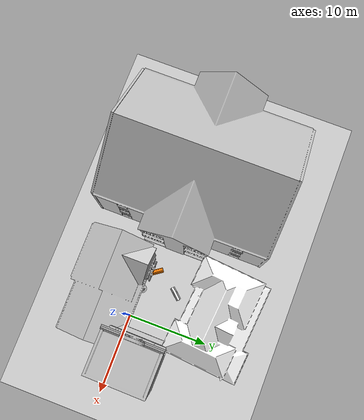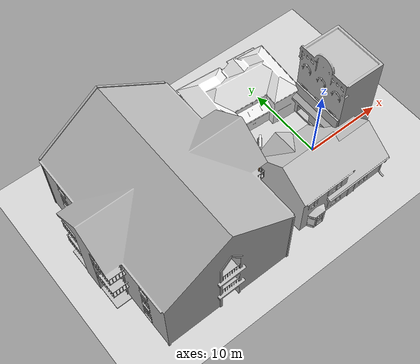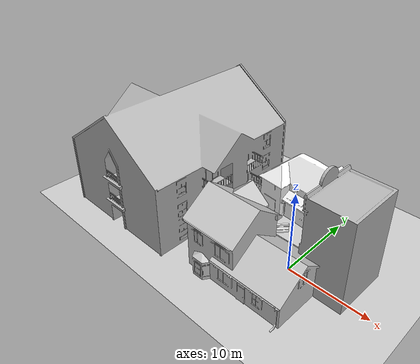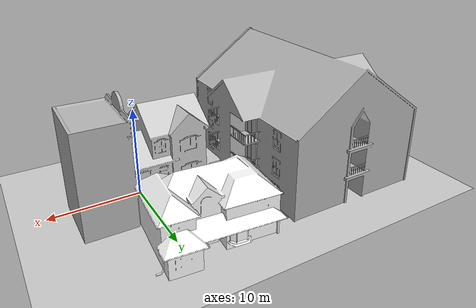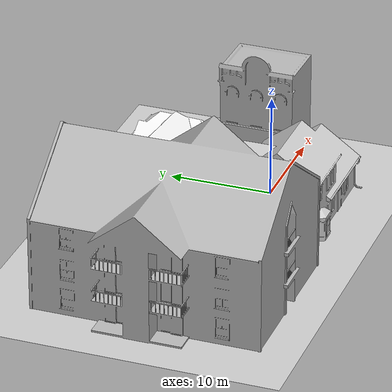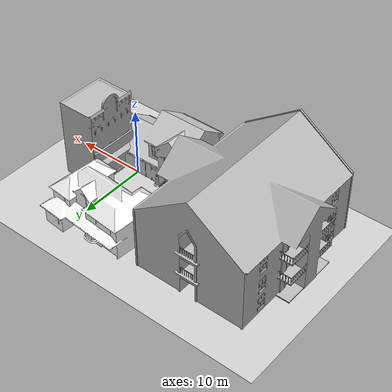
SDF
<sdf version="1.6">
 <world name="default">
  <model name="ground_plane">
   <static>1</static>
   <link name="link">
    <collision name="collision">
     <geometry><plane><normal>0 0 1</normal><size>100 100</size></plane></geometry>
     <surface><friction><ode><mu>100</mu><mu2>50</mu2></ode></friction></surface>
    </collision>
    <visual name="visual">
     <cast_shadows>0</cast_shadows>
     <geometry><plane><normal>0 0 1</normal><size>100 100</size></plane></geometry>
     <material>
      <script><uri>file://media/materials/scripts/gazebo.material</uri><name>Gazebo/Grey</name></script>
     </material>
    </visual>
   </link>
  </model>
  <light name="sun" type="directional">
   <pose>0 0 10 0 -0 0</pose>
   <diffuse>0.8 0.8 0.8 1</diffuse>
   <specular>0.2 0.2 0.2 1</specular>
   <attenuation>
    <range>1000</range>
    <constant>0.9</constant>
    <linear>0.01</linear>
    <quadratic>0.001</quadratic>
   </attenuation>
   <direction>-0.5 0.1 -0.9</direction>
  </light>
  <gravity>0 0 -9.8</gravity>
  <magnetic_field>6e-06 2.3e-05 -4.2e-05</magnetic_field>
  <atmosphere type="adiabatic"/>
  <physics name="default_physics" default="0" type="ode">
   <max_step_size>0.001</max_step_size>
   <real_time_factor>1</real_time_factor>
   <real_time_update_rate>1000</real_time_update_rate>
  </physics>
  <scene><ambient>0.4 0.4 0.4 1</ambient><background>0.7 0.7 0.7 1</background><shadows>1</shadows></scene>
  <spherical_coordinates>
   <surface_model>EARTH_WGS84</surface_model>
   <latitude_deg>0</latitude_deg>
   <longitude_deg>0</longitude_deg>
   <elevation>0</elevation>
   <heading_deg>0</heading_deg>
  </spherical_coordinates>
  <model name="udacity_bot">
   <link name="robot_footprint">
    <inertial>
     <pose>0.002303 0 0.000658 0 -0 0</pose>
     <mass>15.2</mass>
     <inertia>
      <ixx>0.100995</ixx>
      <ixy>0</ixy>
      <ixz>-0.00147697</ixz>
      <iyy>0.107165</iyy>
      <iyz>0</iyz>
      <izz>0.106171</izz>
     </inertia>
    </inertial>
    <collision name="robot_footprint_fixed_joint_lump__collision_collision">
     <geometry><box><size>0.4 0.2 0.1</size></box></geometry>
    </collision>
    <collision name="robot_footprint_fixed_joint_lump__back_caster_collision_collision_1">
     <pose>-0.15 0 -0.05 0 -0 0</pose>
     <geometry><sphere><radius>0.0499</radius></sphere></geometry>
    </collision>
    <collision name="robot_footprint_fixed_joint_lump__front_caster_collision_collision_2">
     <pose>0.15 0 -0.05 0 -0 0</pose>
     <geometry><sphere><radius>0.0499</radius></sphere></geometry>
    </collision>
    <collision name="robot_footprint_fixed_joint_lump__camera_collision_collision_3">
     <pose>0.2 0 0 0 -0 0</pose>
     <geometry><box><size>0.05 0.05 0.05</size></box></geometry>
    </collision>
    <collision name="robot_footprint_fixed_joint_lump__hokuyo_collision_collision_4">
     <pose>0.15 0 0.1 0 -0 0</pose>
     <geometry><box><size>0.1 0.1 0.1</size></box></geometry>
    </collision>
    <visual name="robot_footprint_fixed_joint_lump__chassis_visual_visual">
     <geometry><box><size>0.4 0.2 0.1</size></box></geometry>
    </visual>
    <visual name="robot_footprint_fixed_joint_lump__back_caster_visual_visual_1">
     <pose>-0.15 0 -0.05 0 -0 0</pose>
     <geometry><sphere><radius>0.05</radius></sphere></geometry>
    </visual>
    <visual name="robot_footprint_fixed_joint_lump__front_caster_visual_visual_2">
     <pose>0.15 0 -0.05 0 -0 0</pose>
     <geometry><sphere><radius>0.05</radius></sphere></geometry>
    </visual>
    <visual name="robot_footprint_fixed_joint_lump__camera_visual_visual_3">
     <pose>0.2 0 0 0 -0 0</pose>
     <geometry><box><size>0.05 0.05 0.05</size></box></geometry>
     <material><script><uri>__default__</uri><name>__default__</name></script></material>
    </visual>
    <visual name="robot_footprint_fixed_joint_lump__hokuyo_visual_visual_4">
     <pose>0.15 0 0.1 0 -0 0</pose>
     <geometry>
      <mesh><scale>1 1 1</scale><uri>/home/robond/catkin_ws/src/slam_project/meshes/hokuyo.dae</uri></mesh>
     </geometry>
     <material><script><uri>__default__</uri><name>__default__</name></script></material>
    </visual>
    <sensor name="camera1" type="depth">
     <always_on>1</always_on>
     <update_rate>20</update_rate>
     <visualize>1</visualize>
     <camera name="__default__">
      <horizontal_fov>1.047</horizontal_fov>
      <image><width>640</width><height>480</height><format>R8G8B8</format></image>
      <depth_camera><output>depths</output></depth_camera>
      <clip><near>0.1</near><far>20</far></clip>
     </camera>
     <plugin name="camera_controller" filename="libgazebo_ros_openni_kinect.so">
      <alwaysOn>true</alwaysOn>
      <updateRate>10.0</updateRate>
      <cameraName>camera</cameraName>
      <frameName>camera_rgbd_frame</frameName>
      <imageTopicName>rgb/image_raw</imageTopicName>
      <depthImageTopicName>depth/image_raw</depthImageTopicName>
      <pointCloudTopicName>depth/points</pointCloudTopicName>
      <cameraInfoTopicName>rgb/camera_info</cameraInfoTopicName>
      <depthImageCameraInfoTopicName>depth/camera_info</depthImageCameraInfoTopicName>
      <pointCloudCutoff>0.4</pointCloudCutoff>
      <hackBaseline>0.07</hackBaseline>
      <distortionK1>0.0</distortionK1>
      <distortionK2>0.0</distortionK2>
      <distortionK3>0.0</distortionK3>
      <distortionT1>0.0</distortionT1>
      <distortionT2>0.0</distortionT2>
      <CxPrime>0.0</CxPrime>
      <Cx>0.0</Cx>
      <Cy>0.0</Cy>
      <focalLength>0.0</focalLength>
      <robotNamespace>/</robotNamespace>
     </plugin>
     <pose>0.2 0 0 0 -0 0</pose>
    </sensor>
    <sensor name="head_hokuyo_sensor" type="ray">
     <visualize>0</visualize>
     <update_rate>40</update_rate>
     <ray>
      <scan>
       <horizontal>
        <samples>720</samples>
        <resolution>1</resolution>
        <min_angle>-1.5708</min_angle>
        <max_angle>1.5708</max_angle>
       </horizontal>
       <vertical><samples>1</samples><min_angle>0</min_angle><max_angle>0</max_angle></vertical>
      </scan>
      <range><min>0.2</min><max>30</max><resolution>0.01</resolution></range>
      <noise><type>gaussian</type><mean>0</mean><stddev>0.01</stddev></noise>
     </ray>
     <plugin name="gazebo_ros_head_hokuyo_controller" filename="libgazebo_ros_laser.so">
      <topicName>/scan</topicName>
      <frameName>hokuyo</frameName>
      <robotNamespace>/</robotNamespace>
     </plugin>
     <pose>0.15 0 0.1 0 -0 0</pose>
    </sensor>
   </link>
   <link name="left_wheel">
    <pose>0 0.15 0 0 -0 0</pose>
    <inertial>
     <pose>0 0 0 -0 1.5707 1.5707</pose>
     <mass>5</mass>
     <inertia><ixx>0.1</ixx><ixy>0</ixy><ixz>0</ixz><iyy>0.1</iyy><iyz>0</iyz><izz>0.1</izz></inertia>
    </inertial>
    <collision name="left_wheel_collision_collision">
     <pose>0 0 0 -0 1.5707 1.5707</pose>
     <geometry><cylinder><length>0.05</length><radius>0.1</radius></cylinder></geometry>
    </collision>
    <visual name="left_wheel_visual_visual">
     <pose>0 0 0 -0 1.5707 1.5707</pose>
     <geometry><cylinder><length>0.05</length><radius>0.1</radius></cylinder></geometry>
    </visual>
   </link>
   <joint name="left_wheel_hinge" type="revolute">
    <child>left_wheel</child>
    <parent>robot_footprint</parent>
    <axis>
     <xyz>0 1 0</xyz>
     <limit><lower>-1e+16</lower><upper>1e+16</upper></limit>
     <dynamics><spring_reference>0</spring_reference><spring_stiffness>0</spring_stiffness></dynamics>
     <use_parent_model_frame>1</use_parent_model_frame>
    </axis>
   </joint>
   <link name="right_wheel">
    <pose>0 -0.15 0 0 -0 0</pose>
    <inertial>
     <pose>0 0 0 -0 1.5707 1.5707</pose>
     <mass>5</mass>
     <inertia><ixx>0.1</ixx><ixy>0</ixy><ixz>0</ixz><iyy>0.1</iyy><iyz>0</iyz><izz>0.1</izz></inertia>
    </inertial>
    <collision name="right_wheel_collision_collision">
     <pose>0 0 0 -0 1.5707 1.5707</pose>
     <geometry><cylinder><length>0.05</length><radius>0.1</radius></cylinder></geometry>
    </collision>
    <visual name="right_wheel_visual_visual">
     <pose>0 0 0 -0 1.5707 1.5707</pose>
     <geometry><cylinder><length>0.05</length><radius>0.1</radius></cylinder></geometry>
    </visual>
   </link>
   <joint name="right_wheel_hinge" type="revolute">
    <child>right_wheel</child>
    <parent>robot_footprint</parent>
    <axis>
     <xyz>0 1 0</xyz>
     <limit><lower>-1e+16</lower><upper>1e+16</upper></limit>
     <dynamics><spring_reference>0</spring_reference><spring_stiffness>0</spring_stiffness></dynamics>
     <use_parent_model_frame>1</use_parent_model_frame>
    </axis>
   </joint>
   <static>0</static>
   <plugin name="differential_drive_controller" filename="libgazebo_ros_diff_drive.so">
    <legacyMode>false</legacyMode>
    <alwaysOn>true</alwaysOn>
    <updateRate>10</updateRate>
    <leftJoint>left_wheel_hinge</leftJoint>
    <rightJoint>right_wheel_hinge</rightJoint>
    <wheelSeparation>0.4</wheelSeparation>
    <wheelDiameter>0.2</wheelDiameter>
    <torque>10</torque>
    <commandTopic>cmd_vel</commandTopic>
    <odometryTopic>odom</odometryTopic>
    <odometryFrame>odom</odometryFrame>
    <robotBaseFrame>robot_footprint</robotBaseFrame>
    <robotNamespace>/</robotNamespace>
   </plugin>
   <pose>-0.013416 0.027732 0.100002 0 0.000514 0.144326</pose>
  </model>
  <model name="thrift_shop">
   <static>1</static>
   <link name="link">
    <collision name="collision">
     <pose>0 0 5.69469 0 -0 0</pose>
     <geometry><box><size>7.21297 5.43165 11.3894</size></box></geometry>
    </collision>
    <visual name="visual">
     <pose>0 -0.912491 0 0 -0 0</pose>
     <geometry><mesh><uri>model://thrift_shop/meshes/thrift_shop.dae</uri></mesh></geometry>
    </visual>
   </link>
   <pose>4.82029 2.24331 0 0 0 -1.58306</pose>
  </model>
  <model name="House 2">
   <static>1</static>
   <link name="link">
    <collision name="collision">
     <geometry><mesh><uri>model://house_2/meshes/house_2.dae</uri><scale>1.5 1.5 1.5</scale></mesh></geometry>
    </collision>
    <visual name="visual">
     <geometry><mesh><uri>model://house_2/meshes/house_2.dae</uri><scale>1.5 1.5 1.5</scale></mesh></geometry>
     <material>
      <script>
       <uri>model://house_2/materials/scripts</uri>
       <uri>model://house_2/materials/textures</uri>
       <uri>model://house_1/materials/textures</uri>
       <name>House_2/Diffuse</name>
      </script>
      <shader type="normal_map_tangent_space">
       <normal_map>model://house_1/materials/textures/House_1_Normal.png</normal_map>
      </shader>
     </material>
    </visual>
   </link>
   <pose>-4.44017 9.84452 0 0 0 -0.082777</pose>
  </model>
  <model name="House 3">
   <static>1</static>
   <link name="link">
    <collision name="collision">
     <geometry><mesh><uri>model://house_3/meshes/house_3.dae</uri><scale>1.5 1.5 1.5</scale></mesh></geometry>
    </collision>
    <visual name="visual">
     <geometry><mesh><uri>model://house_3/meshes/house_3.dae</uri><scale>1.5 1.5 1.5</scale></mesh></geometry>
     <material>
      <script>
       <uri>model://house_3/materials/scripts</uri>
       <uri>model://house_3/materials/textures</uri>
       <uri>model://house_1/materials/textures</uri>
       <name>House_3/Diffuse</name>
      </script>
      <shader type="normal_map_tangent_space">
       <normal_map>model://house_1/materials/textures/House_1_Normal.png</normal_map>
      </shader>
     </material>
    </visual>
   </link>
   <pose>-1.62498 -3.47285 0 0 -0 0</pose>
  </model>
  <model name="drc_practice_organge_jersey_barrier">
   <static>1</static>
   <link name="link">
    <visual name="visual">
     <geometry>
      <mesh><uri>model://drc_practice_orange_jersey_barrier/meshes/jersey_barrier.dae</uri></mesh>
     </geometry>
    </visual>
    <collision name="collision">
     <geometry>
      <mesh><uri>model://drc_practice_orange_jersey_barrier/meshes/jersey_barrier.dae</uri></mesh>
     </geometry>
    </collision>
   </link>
   <pose>-6.26943 1.12088 0 0 -0 0.621812</pose>
  </model>
  <model name="drc_practice_white_jersey_barrier">
   <static>1</static>
   <link name="link">
    <visual name="visual">
     <geometry>
      <mesh><uri>model://drc_practice_white_jersey_barrier/meshes/jersey_barrier.dae</uri></mesh>
     </geometry>
    </visual>
    <collision name="collision">
     <geometry>
      <mesh><uri>model://drc_practice_white_jersey_barrier/meshes/jersey_barrier.dae</uri></mesh>
     </geometry>
    </collision>
   </link>
   <pose>-4.5122 4.38323 0 0 -0 2.42745</pose>
  </model>
  <model name="apartment">
   <static>1</static>
   <link name="link">
    <collision name="collision">
     <geometry><mesh><uri>model://apartment/meshes/apartment.dae</uri></mesh></geometry>
    </collision>
    <visual name="visual">
     <geometry><mesh><uri>model://apartment/meshes/apartment.dae</uri></mesh></geometry>
    </visual>
   </link>
   <pose>-19.4991 2.3341 0 0 -0 0</pose>
  </model>
  <model name="Construction Barrel">
   <link name="link">
    <inertial>
     <pose>0 0 0.4 0 -0 0</pose>
     <mass>500</mass>
     <inertia><ixx>51.2096</ixx><iyy>51.2096</iyy><izz>25</izz><ixy>0</ixy><ixz>0</ixz><iyz>0</iyz></inertia>
    </inertial>
    <collision name="collision">
     <geometry><mesh><uri>model://construction_barrel/meshes/construction_barrel.dae</uri></mesh></geometry>
    </collision>
    <visual name="visual">
     <geometry><mesh><uri>model://construction_barrel/meshes/construction_barrel.dae</uri></mesh></geometry>
    </visual>
   </link>
   <pose>-3.66513 0.259015 -1e-06 3e-06 -2e-06 -2e-06</pose>
  </model>
 </world>
</sdf>
